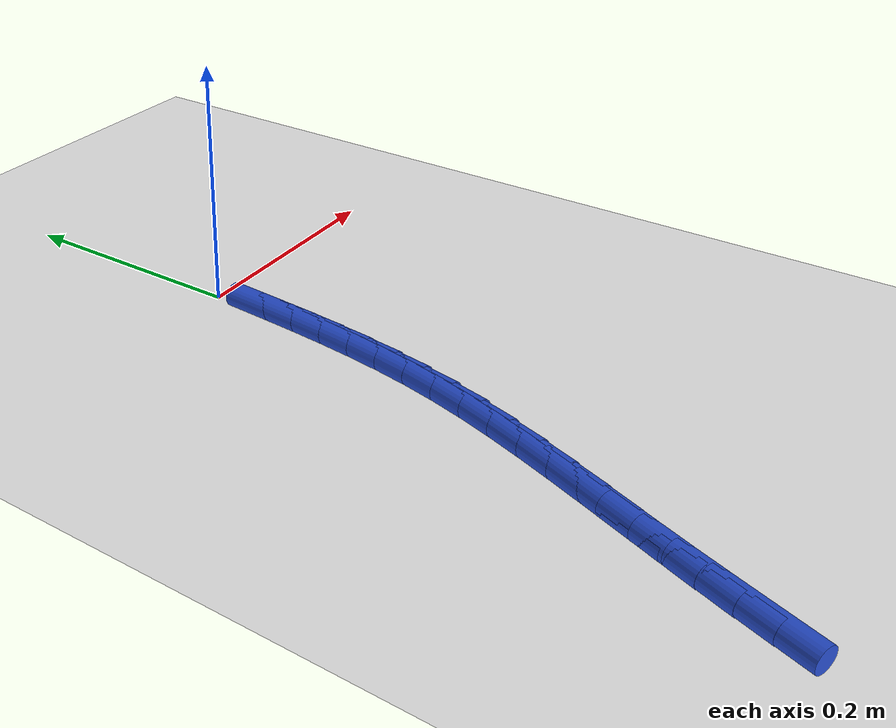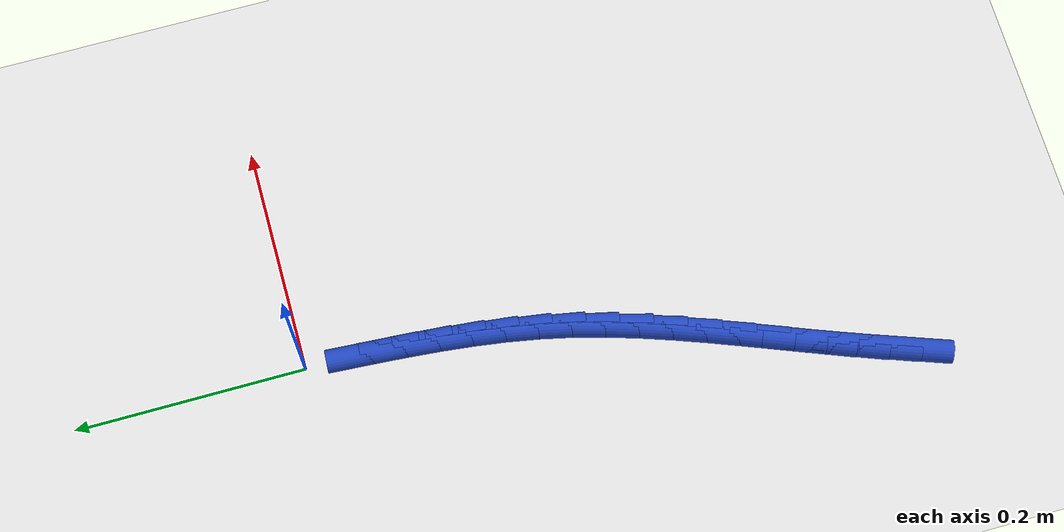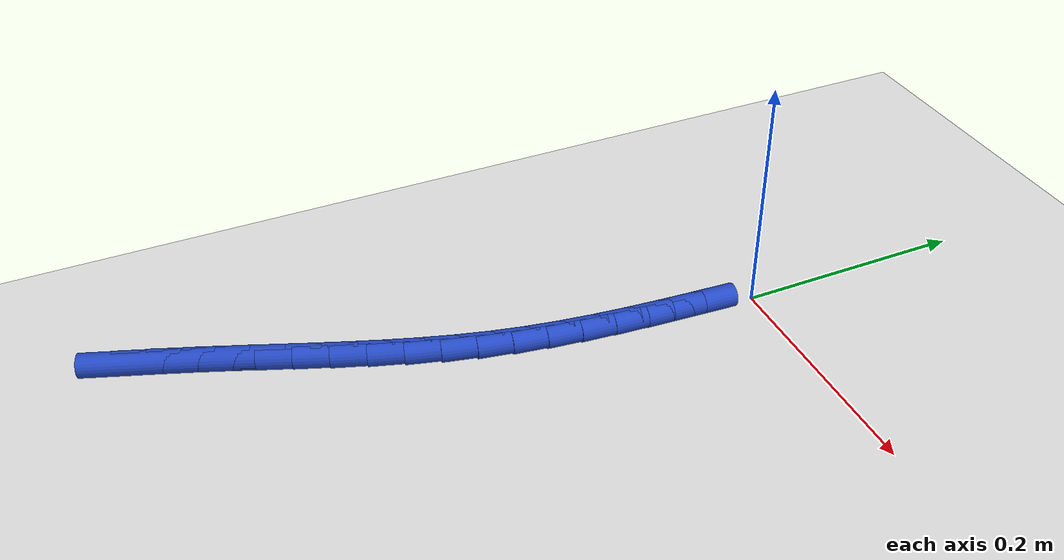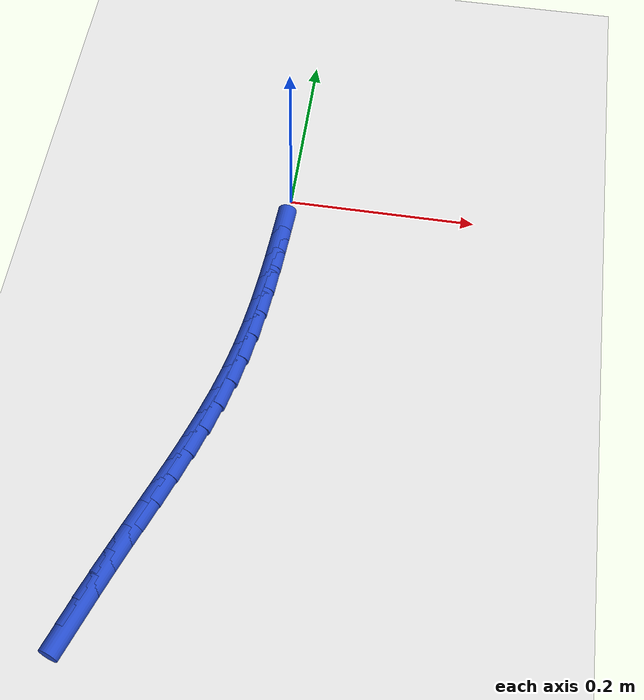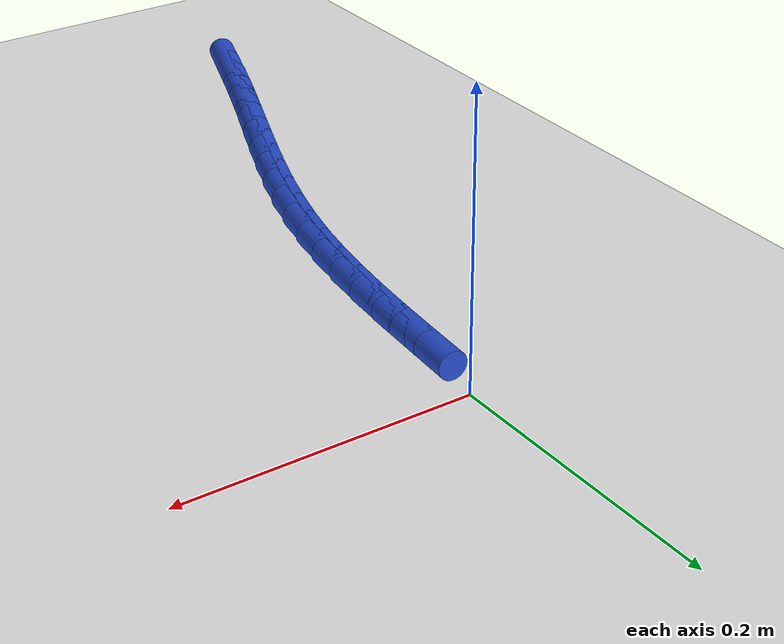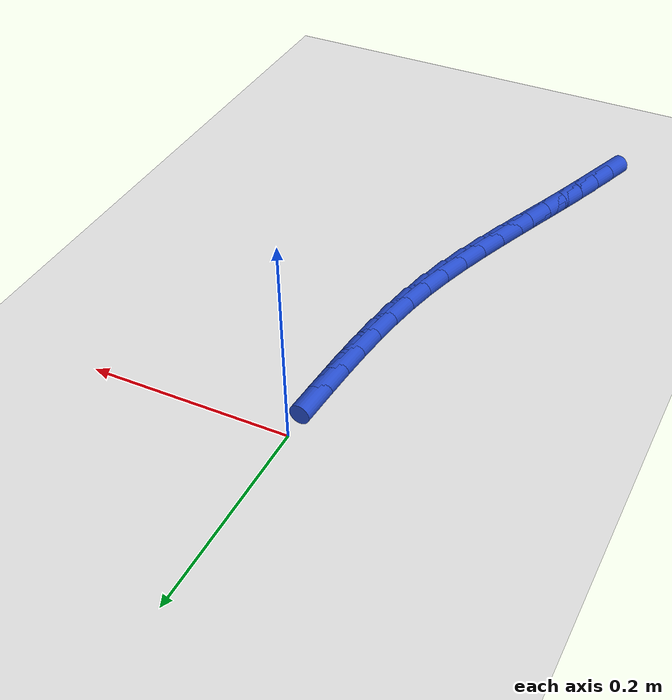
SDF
<sdf version="1.6">
 <world name="default">
  <model name="ground_plane">
   <static>1</static>
   <link name="link">
    <collision name="collision">
     <geometry><plane><normal>0 0 1</normal><size>100 100</size></plane></geometry>
     <surface><friction><ode><mu>100</mu><mu2>50</mu2></ode></friction></surface>
    </collision>
    <visual name="visual">
     <cast_shadows>0</cast_shadows>
     <geometry><plane><normal>0 0 1</normal><size>100 100</size></plane></geometry>
     <material>
      <script><uri>file://media/materials/scripts/gazebo.material</uri><name>Gazebo/WhiteGlow</name></script>
     </material>
    </visual>
   </link>
  </model>
  <model name="line">
   <link name="link_262">
    <pose>-0.12016361422847104 -0.4919445232279833 0.01 0 1.57 1.2277735577431501</pose>
    <collision name="collision">
     <geometry><cylinder><radius>0.01</radius><length>0.08</length></cylinder></geometry>
    </collision>
    <visual name="visual">
     <material>
      <script><name>Gazebo/Blue</name><uri>file://media/materials/scripts/gazebo.material</uri></script>
     </material>
     <geometry><cylinder><radius>0.01</radius><length>0.08</length></cylinder></geometry>
    </visual>
   </link>
   <link name="link_263">
    <pose>-0.11126131254408379 -0.4670179863289389 0.01 0 1.57 1.2190135449244868</pose>
    <collision name="collision">
     <geometry><cylinder><radius>0.01</radius><length>0.08</length></cylinder></geometry>
    </collision>
    <visual name="visual">
     <material>
      <script><name>Gazebo/Blue</name><uri>file://media/materials/scripts/gazebo.material</uri></script>
     </material>
     <geometry><cylinder><radius>0.01</radius><length>0.08</length></cylinder></geometry>
    </visual>
   </link>
   <link name="link_264">
    <pose>-0.10197152549559346 -0.4417086730533876 0.01 0 1.57 1.2070599412292016</pose>
    <collision name="collision">
     <geometry><cylinder><radius>0.01</radius><length>0.08</length></cylinder></geometry>
    </collision>
    <visual name="visual">
     <material>
      <script><name>Gazebo/Blue</name><uri>file://media/materials/scripts/gazebo.material</uri></script>
     </material>
     <geometry><cylinder><radius>0.01</radius><length>0.08</length></cylinder></geometry>
    </visual>
   </link>
   <link name="link_265">
    <pose>-0.09216964872510146 -0.4159599734282467 0.01 0 1.57 1.1990116012623007</pose>
    <collision name="collision">
     <geometry><cylinder><radius>0.01</radius><length>0.08</length></cylinder></geometry>
    </collision>
    <visual name="visual">
     <material>
      <script><name>Gazebo/Blue</name><uri>file://media/materials/scripts/gazebo.material</uri></script>
     </material>
     <geometry><cylinder><radius>0.01</radius><length>0.08</length></cylinder></geometry>
    </visual>
   </link>
   <link name="link_266">
    <pose>-0.08196313658188575 -0.3897839124900588 0.01 0 1.57 1.1986120944943397</pose>
    <collision name="collision">
     <geometry><cylinder><radius>0.01</radius><length>0.08</length></cylinder></geometry>
    </collision>
    <visual name="visual">
     <material>
      <script><name>Gazebo/Blue</name><uri>file://media/materials/scripts/gazebo.material</uri></script>
     </material>
     <geometry><cylinder><radius>0.01</radius><length>0.08</length></cylinder></geometry>
    </visual>
   </link>
   <link name="link_267">
    <pose>-0.07159849149078511 -0.3632336409289593 0.01 0 1.57 1.2055859904970354</pose>
    <collision name="collision">
     <geometry><cylinder><radius>0.01</radius><length>0.08</length></cylinder></geometry>
    </collision>
    <visual name="visual">
     <material>
      <script><name>Gazebo/Blue</name><uri>file://media/materials/scripts/gazebo.material</uri></script>
     </material>
     <geometry><cylinder><radius>0.01</radius><length>0.08</length></cylinder></geometry>
    </visual>
   </link>
   <link name="link_268">
    <pose>-0.061324098007545624 -0.3363628661048785 0.01 0 1.57 1.2198286268116734</pose>
    <collision name="collision">
     <geometry><cylinder><radius>0.01</radius><length>0.08</length></cylinder></geometry>
    </collision>
    <visual name="visual">
     <material>
      <script><name>Gazebo/Blue</name><uri>file://media/materials/scripts/gazebo.material</uri></script>
     </material>
     <geometry><cylinder><radius>0.01</radius><length>0.08</length></cylinder></geometry>
    </visual>
   </link>
   <link name="link_269">
    <pose>-0.05138834068791336 -0.3092252953777467 0.01 0 1.57 1.2414360167311802</pose>
    <collision name="collision">
     <geometry><cylinder><radius>0.01</radius><length>0.08</length></cylinder></geometry>
    </collision>
    <visual name="visual">
     <material>
      <script><name>Gazebo/Blue</name><uri>file://media/materials/scripts/gazebo.material</uri></script>
     </material>
     <geometry><cylinder><radius>0.01</radius><length>0.08</length></cylinder></geometry>
    </visual>
   </link>
   <link name="link_270">
    <pose>-0.04203960408763413 -0.2818746361074933 0.01 0 1.57 1.2706809260584908</pose>
    <collision name="collision">
     <geometry><cylinder><radius>0.01</radius><length>0.08</length></cylinder></geometry>
    </collision>
    <visual name="visual">
     <material>
      <script><name>Gazebo/Blue</name><uri>file://media/materials/scripts/gazebo.material</uri></script>
     </material>
     <geometry><cylinder><radius>0.01</radius><length>0.08</length></cylinder></geometry>
    </visual>
   </link>
   <link name="link_271">
    <pose>-0.0335262727624546 -0.2543645956540507 0.01 0 1.57 1.307985904531288</pose>
    <collision name="collision">
     <geometry><cylinder><radius>0.01</radius><length>0.08</length></cylinder></geometry>
    </collision>
    <visual name="visual">
     <material>
      <script><name>Gazebo/Blue</name><uri>file://media/materials/scripts/gazebo.material</uri></script>
     </material>
     <geometry><cylinder><radius>0.01</radius><length>0.08</length></cylinder></geometry>
    </visual>
   </link>
   <link name="link_272">
    <pose>-0.026096731268120524 -0.2267488813773478 0.01 0 1.57 1.352428081597992</pose>
    <collision name="collision">
     <geometry><cylinder><radius>0.01</radius><length>0.08</length></cylinder></geometry>
    </collision>
    <visual name="visual">
     <material>
      <script><name>Gazebo/Blue</name><uri>file://media/materials/scripts/gazebo.material</uri></script>
     </material>
     <geometry><cylinder><radius>0.01</radius><length>0.08</length></cylinder></geometry>
    </visual>
   </link>
   <link name="link_273">
    <pose>-0.019954724897148585 -0.19907055278665625 0.01 0 1.57 1.3948977141757328</pose>
    <collision name="collision">
     <geometry><cylinder><radius>0.01</radius><length>0.08</length></cylinder></geometry>
    </collision>
    <visual name="visual">
     <material>
      <script><name>Gazebo/Blue</name><uri>file://media/materials/scripts/gazebo.material</uri></script>
     </material>
     <geometry><cylinder><radius>0.01</radius><length>0.08</length></cylinder></geometry>
    </visual>
   </link>
   <link name="link_274">
    <pose>-0.0150197789726811 -0.17130487410142156 0.01 0 1.57 1.4312355650693944</pose>
    <collision name="collision">
     <geometry><cylinder><radius>0.01</radius><length>0.08</length></cylinder></geometry>
    </collision>
    <visual name="visual">
     <material>
      <script><name>Gazebo/Blue</name><uri>file://media/materials/scripts/gazebo.material</uri></script>
     </material>
     <geometry><cylinder><radius>0.01</radius><length>0.08</length></cylinder></geometry>
    </visual>
   </link>
   <link name="link_275">
    <pose>-0.011099943702856427 -0.14340051926403533 0.01 0 1.57 1.4610064275757346</pose>
    <collision name="collision">
     <geometry><cylinder><radius>0.01</radius><length>0.08</length></cylinder></geometry>
    </collision>
    <visual name="visual">
     <material>
      <script><name>Gazebo/Blue</name><uri>file://media/materials/scripts/gazebo.material</uri></script>
     </material>
     <geometry><cylinder><radius>0.01</radius><length>0.08</length></cylinder></geometry>
    </visual>
   </link>
   <link name="link_276">
    <pose>-0.008003006882720992 -0.11530609962321665 0.01 0 1.57 1.483978773251954</pose>
    <collision name="collision">
     <geometry><cylinder><radius>0.01</radius><length>0.08</length></cylinder></geometry>
    </collision>
    <visual name="visual">
     <material>
      <script><name>Gazebo/Blue</name><uri>file://media/materials/scripts/gazebo.material</uri></script>
     </material>
     <geometry><cylinder><radius>0.01</radius><length>0.08</length></cylinder></geometry>
    </visual>
   </link>
   <link name="link_277">
    <pose>-0.005536756307321212 -0.08697022652768471 0.01 0 1.57 1.50008425907525</pose>
    <collision name="collision">
     <geometry><cylinder><radius>0.01</radius><length>0.08</length></cylinder></geometry>
    </collision>
    <visual name="visual">
     <material>
      <script><name>Gazebo/Blue</name><uri>file://media/materials/scripts/gazebo.material</uri></script>
     </material>
     <geometry><cylinder><radius>0.01</radius><length>0.08</length></cylinder></geometry>
    </visual>
   </link>
   <link name="link_278">
    <pose>-0.0035089797717035138 -0.058341511326158654 0.01 0 1.57 1.5093847413554722</pose>
    <collision name="collision">
     <geometry><cylinder><radius>0.01</radius><length>0.08</length></cylinder></geometry>
    </collision>
    <visual name="visual">
     <material>
      <script><name>Gazebo/Blue</name><uri>file://media/materials/scripts/gazebo.material</uri></script>
     </material>
     <geometry><cylinder><radius>0.01</radius><length>0.08</length></cylinder></geometry>
    </visual>
   </link>
  </model>
 </world>
</sdf>
